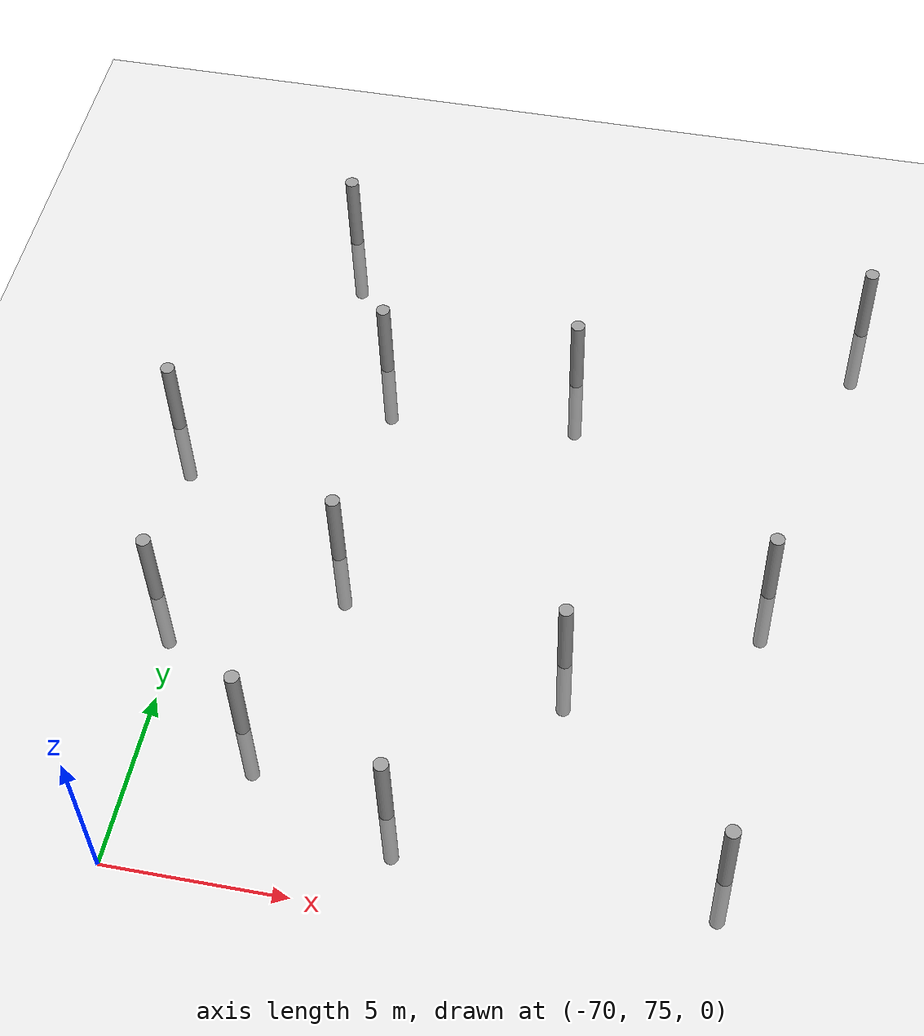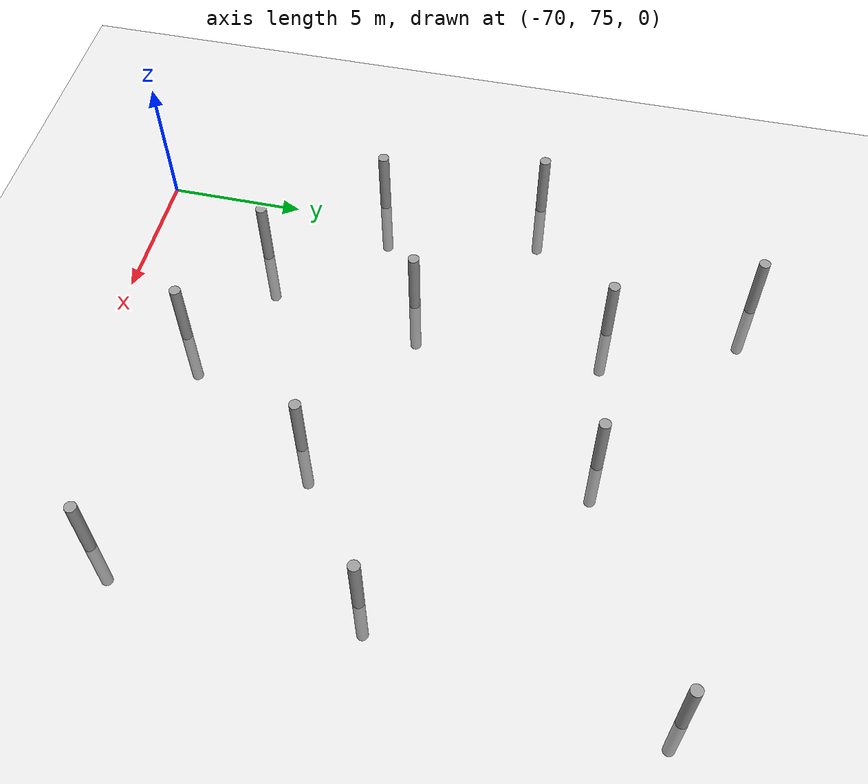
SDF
<sdf version="1.6">
 <world name="default">
  <model name="ground_plane">
   <static>1</static>
   <link name="link">
    <collision name="collision">
     <geometry><plane><normal>0 0 1</normal><size>100 100</size></plane></geometry>
     <surface><friction><ode><mu>100</mu><mu2>50</mu2></ode></friction></surface>
    </collision>
    <visual name="visual">
     <cast_shadows>0</cast_shadows>
     <geometry><plane><normal>0 0 1</normal><size>100 100</size></plane></geometry>
     <material>
      <script><uri>file://media/materials/scripts/gazebo.material</uri><name>Gazebo/Grey</name></script>
     </material>
    </visual>
   </link>
  </model>
  <model name="empty_pillars">
   <model name="empty_pillar_clone_1">
    <link name="link">
     <inertial>
      <mass>1</mass>
      <inertia><ixx>0.145833</ixx><ixy>0</ixy><ixz>0</ixz><iyy>0.145833</iyy><iyz>0</iyz><izz>0.125</izz></inertia>
     </inertial>
     <visual name="visual">
      <geometry><cylinder><radius>0.2</radius><length>5</length></cylinder></geometry>
      <material>
       <script><name>Gazebo/Grey</name><uri>file://media/materials/scripts/gazebo.material</uri></script>
       <shader type="vertex"><normal_map>__default__</normal_map></shader>
       <ambient>0.3 0.3 0.3 1</ambient>
       <diffuse>0.7 0.7 0.7 1</diffuse>
       <specular>0.01 0.01 0.01 1</specular>
       <emissive>0 0 0 1</emissive>
      </material>
     </visual>
     <collision name="collision">
      <geometry><cylinder><radius>0.05</radius><length>5</length></cylinder></geometry>
      <surface>
       <friction>
        <ode><mu>1</mu><mu2>1</mu2><fdir1>0 0 0</fdir1><slip1>0</slip1><slip2>0</slip2></ode>
        <torsional>
         <coefficient>1</coefficient>
         <patch_radius>0</patch_radius>
         <surface_radius>0</surface_radius>
         <use_patch_radius>1</use_patch_radius>
         <ode><slip>0</slip></ode>
        </torsional>
       </friction>
       <bounce><restitution_coefficient>0</restitution_coefficient><threshold>1e+06</threshold></bounce>
       <contact>
        <collide_without_contact>0</collide_without_contact>
        <collide_without_contact_bitmask>1</collide_without_contact_bitmask>
        <collide_bitmask>1</collide_bitmask>
        <ode>
         <soft_cfm>0</soft_cfm>
         <soft_erp>0.2</soft_erp>
         <kp>1e+13</kp>
         <kd>1</kd>
         <max_vel>0.01</max_vel>
         <min_depth>0</min_depth>
        </ode>
        <bullet>
         <split_impulse>1</split_impulse>
         <split_impulse_penetration_threshold>-0.01</split_impulse_penetration_threshold>
         <soft_cfm>0</soft_cfm>
         <soft_erp>0.2</soft_erp>
         <kp>1e+13</kp>
         <kd>1</kd>
        </bullet>
       </contact>
      </surface>
     </collision>
    </link>
    <static>0</static>
    <pose>8.92248 2.14838 0 0 -0 0</pose>
   </model>
   <model name="empty_pillar_clone_26">
    <link name="link">
     <inertial>
      <mass>1</mass>
      <inertia><ixx>0.145833</ixx><ixy>0</ixy><ixz>0</ixz><iyy>0.145833</iyy><iyz>0</iyz><izz>0.125</izz></inertia>
     </inertial>
     <visual name="visual">
      <geometry><cylinder><radius>0.2</radius><length>5</length></cylinder></geometry>
      <material>
       <script><name>Gazebo/Grey</name><uri>file://media/materials/scripts/gazebo.material</uri></script>
       <shader type="vertex"><normal_map>__default__</normal_map></shader>
       <ambient>0.3 0.3 0.3 1</ambient>
       <diffuse>0.7 0.7 0.7 1</diffuse>
       <specular>0.01 0.01 0.01 1</specular>
       <emissive>0 0 0 1</emissive>
      </material>
     </visual>
     <collision name="collision">
      <geometry><cylinder><radius>0.05</radius><length>5</length></cylinder></geometry>
      <surface>
       <friction>
        <ode><mu>1</mu><mu2>1</mu2><fdir1>0 0 0</fdir1><slip1>0</slip1><slip2>0</slip2></ode>
        <torsional>
         <coefficient>1</coefficient>
         <patch_radius>0</patch_radius>
         <surface_radius>0</surface_radius>
         <use_patch_radius>1</use_patch_radius>
         <ode><slip>0</slip></ode>
        </torsional>
       </friction>
       <bounce><restitution_coefficient>0</restitution_coefficient><threshold>1e+06</threshold></bounce>
       <contact>
        <collide_without_contact>0</collide_without_contact>
        <collide_without_contact_bitmask>1</collide_without_contact_bitmask>
        <collide_bitmask>1</collide_bitmask>
        <ode>
         <soft_cfm>0</soft_cfm>
         <soft_erp>0.2</soft_erp>
         <kp>1e+13</kp>
         <kd>1</kd>
         <max_vel>0.01</max_vel>
         <min_depth>0</min_depth>
        </ode>
        <bullet>
         <split_impulse>1</split_impulse>
         <split_impulse_penetration_threshold>-0.01</split_impulse_penetration_threshold>
         <soft_cfm>0</soft_cfm>
         <soft_erp>0.2</soft_erp>
         <kp>1e+13</kp>
         <kd>1</kd>
        </bullet>
       </contact>
      </surface>
     </collision>
    </link>
    <static>0</static>
    <pose>7.70652 20.1444 0 0 -0 0</pose>
   </model>
   <model name="empty_pillar_clone_27">
    <link name="link">
     <inertial>
      <mass>1</mass>
      <inertia><ixx>0.145833</ixx><ixy>0</ixy><ixz>0</ixz><iyy>0.145833</iyy><iyz>0</iyz><izz>0.125</izz></inertia>
     </inertial>
     <visual name="visual">
      <geometry><cylinder><radius>0.2</radius><length>5</length></cylinder></geometry>
      <material>
       <script><name>Gazebo/Grey</name><uri>file://media/materials/scripts/gazebo.material</uri></script>
       <shader type="vertex"><normal_map>__default__</normal_map></shader>
       <ambient>0.3 0.3 0.3 1</ambient>
       <diffuse>0.7 0.7 0.7 1</diffuse>
       <specular>0.01 0.01 0.01 1</specular>
       <emissive>0 0 0 1</emissive>
      </material>
     </visual>
     <collision name="collision">
      <geometry><cylinder><radius>0.05</radius><length>5</length></cylinder></geometry>
      <surface>
       <friction>
        <ode><mu>1</mu><mu2>1</mu2><fdir1>0 0 0</fdir1><slip1>0</slip1><slip2>0</slip2></ode>
        <torsional>
         <coefficient>1</coefficient>
         <patch_radius>0</patch_radius>
         <surface_radius>0</surface_radius>
         <use_patch_radius>1</use_patch_radius>
         <ode><slip>0</slip></ode>
        </torsional>
       </friction>
       <bounce><restitution_coefficient>0</restitution_coefficient><threshold>1e+06</threshold></bounce>
       <contact>
        <collide_without_contact>0</collide_without_contact>
        <collide_without_contact_bitmask>1</collide_without_contact_bitmask>
        <collide_bitmask>1</collide_bitmask>
        <ode>
         <soft_cfm>0</soft_cfm>
         <soft_erp>0.2</soft_erp>
         <kp>1e+13</kp>
         <kd>1</kd>
         <max_vel>0.01</max_vel>
         <min_depth>0</min_depth>
        </ode>
        <bullet>
         <split_impulse>1</split_impulse>
         <split_impulse_penetration_threshold>-0.01</split_impulse_penetration_threshold>
         <soft_cfm>0</soft_cfm>
         <soft_erp>0.2</soft_erp>
         <kp>1e+13</kp>
         <kd>1</kd>
        </bullet>
       </contact>
      </surface>
     </collision>
    </link>
    <static>0</static>
    <pose>4.32163 11.823 0 0 -0 0</pose>
   </model>
   <model name="empty_pillar_clone_28">
    <link name="link">
     <inertial>
      <mass>1</mass>
      <inertia><ixx>0.145833</ixx><ixy>0</ixy><ixz>0</ixz><iyy>0.145833</iyy><iyz>0</iyz><izz>0.125</izz></inertia>
     </inertial>
     <visual name="visual">
      <geometry><cylinder><radius>0.2</radius><length>5</length></cylinder></geometry>
      <material>
       <script><name>Gazebo/Grey</name><uri>file://media/materials/scripts/gazebo.material</uri></script>
       <shader type="vertex"><normal_map>__default__</normal_map></shader>
       <ambient>0.3 0.3 0.3 1</ambient>
       <diffuse>0.7 0.7 0.7 1</diffuse>
       <specular>0.01 0.01 0.01 1</specular>
       <emissive>0 0 0 1</emissive>
      </material>
     </visual>
     <collision name="collision">
      <geometry><cylinder><radius>0.05</radius><length>5</length></cylinder></geometry>
      <surface>
       <friction>
        <ode><mu>1</mu><mu2>1</mu2><fdir1>0 0 0</fdir1><slip1>0</slip1><slip2>0</slip2></ode>
        <torsional>
         <coefficient>1</coefficient>
         <patch_radius>0</patch_radius>
         <surface_radius>0</surface_radius>
         <use_patch_radius>1</use_patch_radius>
         <ode><slip>0</slip></ode>
        </torsional>
       </friction>
       <bounce><restitution_coefficient>0</restitution_coefficient><threshold>1e+06</threshold></bounce>
       <contact>
        <collide_without_contact>0</collide_without_contact>
        <collide_without_contact_bitmask>1</collide_without_contact_bitmask>
        <collide_bitmask>1</collide_bitmask>
        <ode>
         <soft_cfm>0</soft_cfm>
         <soft_erp>0.2</soft_erp>
         <kp>1e+13</kp>
         <kd>1</kd>
         <max_vel>0.01</max_vel>
         <min_depth>0</min_depth>
        </ode>
        <bullet>
         <split_impulse>1</split_impulse>
         <split_impulse_penetration_threshold>-0.01</split_impulse_penetration_threshold>
         <soft_cfm>0</soft_cfm>
         <soft_erp>0.2</soft_erp>
         <kp>1e+13</kp>
         <kd>1</kd>
        </bullet>
       </contact>
      </surface>
     </collision>
    </link>
    <static>0</static>
    <pose>15.5447 15.5867 0 0 -0 0</pose>
   </model>
   <model name="empty_pillar_clone_29">
    <link name="link">
     <inertial>
      <mass>1</mass>
      <inertia><ixx>0.145833</ixx><ixy>0</ixy><ixz>0</ixz><iyy>0.145833</iyy><iyz>0</iyz><izz>0.125</izz></inertia>
     </inertial>
     <visual name="visual">
      <geometry><cylinder><radius>0.2</radius><length>5</length></cylinder></geometry>
      <material>
       <script><name>Gazebo/Grey</name><uri>file://media/materials/scripts/gazebo.material</uri></script>
       <shader type="vertex"><normal_map>__default__</normal_map></shader>
       <ambient>0.3 0.3 0.3 1</ambient>
       <diffuse>0.7 0.7 0.7 1</diffuse>
       <specular>0.01 0.01 0.01 1</specular>
       <emissive>0 0 0 1</emissive>
      </material>
     </visual>
     <collision name="collision">
      <geometry><cylinder><radius>0.05</radius><length>5</length></cylinder></geometry>
      <surface>
       <friction>
        <ode><mu>1</mu><mu2>1</mu2><fdir1>0 0 0</fdir1><slip1>0</slip1><slip2>0</slip2></ode>
        <torsional>
         <coefficient>1</coefficient>
         <patch_radius>0</patch_radius>
         <surface_radius>0</surface_radius>
         <use_patch_radius>1</use_patch_radius>
         <ode><slip>0</slip></ode>
        </torsional>
       </friction>
       <bounce><restitution_coefficient>0</restitution_coefficient><threshold>1e+06</threshold></bounce>
       <contact>
        <collide_without_contact>0</collide_without_contact>
        <collide_without_contact_bitmask>1</collide_without_contact_bitmask>
        <collide_bitmask>1</collide_bitmask>
        <ode>
         <soft_cfm>0</soft_cfm>
         <soft_erp>0.2</soft_erp>
         <kp>1e+13</kp>
         <kd>1</kd>
         <max_vel>0.01</max_vel>
         <min_depth>0</min_depth>
        </ode>
        <bullet>
         <split_impulse>1</split_impulse>
         <split_impulse_penetration_threshold>-0.01</split_impulse_penetration_threshold>
         <soft_cfm>0</soft_cfm>
         <soft_erp>0.2</soft_erp>
         <kp>1e+13</kp>
         <kd>1</kd>
        </bullet>
       </contact>
      </surface>
     </collision>
    </link>
    <static>0</static>
    <pose>10.08 8.0876 0 0 -0 0</pose>
   </model>
   <model name="empty_pillar_clone_30">
    <link name="link">
     <inertial>
      <mass>1</mass>
      <inertia><ixx>0.145833</ixx><ixy>0</ixy><ixz>0</ixz><iyy>0.145833</iyy><iyz>0</iyz><izz>0.125</izz></inertia>
     </inertial>
     <visual name="visual">
      <geometry><cylinder><radius>0.2</radius><length>5</length></cylinder></geometry>
      <material>
       <script><name>Gazebo/Grey</name><uri>file://media/materials/scripts/gazebo.material</uri></script>
       <shader type="vertex"><normal_map>__default__</normal_map></shader>
       <ambient>0.3 0.3 0.3 1</ambient>
       <diffuse>0.7 0.7 0.7 1</diffuse>
       <specular>0.01 0.01 0.01 1</specular>
       <emissive>0 0 0 1</emissive>
      </material>
     </visual>
     <collision name="collision">
      <geometry><cylinder><radius>0.05</radius><length>5</length></cylinder></geometry>
      <surface>
       <friction>
        <ode><mu>1</mu><mu2>1</mu2><fdir1>0 0 0</fdir1><slip1>0</slip1><slip2>0</slip2></ode>
        <torsional>
         <coefficient>1</coefficient>
         <patch_radius>0</patch_radius>
         <surface_radius>0</surface_radius>
         <use_patch_radius>1</use_patch_radius>
         <ode><slip>0</slip></ode>
        </torsional>
       </friction>
       <bounce><restitution_coefficient>0</restitution_coefficient><threshold>1e+06</threshold></bounce>
       <contact>
        <collide_without_contact>0</collide_without_contact>
        <collide_without_contact_bitmask>1</collide_without_contact_bitmask>
        <collide_bitmask>1</collide_bitmask>
        <ode>
         <soft_cfm>0</soft_cfm>
         <soft_erp>0.2</soft_erp>
         <kp>1e+13</kp>
         <kd>1</kd>
         <max_vel>0.01</max_vel>
         <min_depth>0</min_depth>
        </ode>
        <bullet>
         <split_impulse>1</split_impulse>
         <split_impulse_penetration_threshold>-0.01</split_impulse_penetration_threshold>
         <soft_cfm>0</soft_cfm>
         <soft_erp>0.2</soft_erp>
         <kp>1e+13</kp>
         <kd>1</kd>
        </bullet>
       </contact>
      </surface>
     </collision>
    </link>
    <static>0</static>
    <pose>23.752 19.2231 0 0 -0 0</pose>
   </model>
   <model name="empty_pillar_clone_31">
    <link name="link">
     <inertial>
      <mass>1</mass>
      <inertia><ixx>0.145833</ixx><ixy>0</ixy><ixz>0</ixz><iyy>0.145833</iyy><iyz>0</iyz><izz>0.125</izz></inertia>
     </inertial>
     <visual name="visual">
      <geometry><cylinder><radius>0.2</radius><length>5</length></cylinder></geometry>
      <material>
       <script><name>Gazebo/Grey</name><uri>file://media/materials/scripts/gazebo.material</uri></script>
       <shader type="vertex"><normal_map>__default__</normal_map></shader>
       <ambient>0.3 0.3 0.3 1</ambient>
       <diffuse>0.7 0.7 0.7 1</diffuse>
       <specular>0.01 0.01 0.01 1</specular>
       <emissive>0 0 0 1</emissive>
      </material>
     </visual>
     <collision name="collision">
      <geometry><cylinder><radius>0.05</radius><length>5</length></cylinder></geometry>
      <surface>
       <friction>
        <ode><mu>1</mu><mu2>1</mu2><fdir1>0 0 0</fdir1><slip1>0</slip1><slip2>0</slip2></ode>
        <torsional>
         <coefficient>1</coefficient>
         <patch_radius>0</patch_radius>
         <surface_radius>0</surface_radius>
         <use_patch_radius>1</use_patch_radius>
         <ode><slip>0</slip></ode>
        </torsional>
       </friction>
       <bounce><restitution_coefficient>0</restitution_coefficient><threshold>1e+06</threshold></bounce>
       <contact>
        <collide_without_contact>0</collide_without_contact>
        <collide_without_contact_bitmask>1</collide_without_contact_bitmask>
        <collide_bitmask>1</collide_bitmask>
        <ode>
         <soft_cfm>0</soft_cfm>
         <soft_erp>0.2</soft_erp>
         <kp>1e+13</kp>
         <kd>1</kd>
         <max_vel>0.01</max_vel>
         <min_depth>0</min_depth>
        </ode>
        <bullet>
         <split_impulse>1</split_impulse>
         <split_impulse_penetration_threshold>-0.01</split_impulse_penetration_threshold>
         <soft_cfm>0</soft_cfm>
         <soft_erp>0.2</soft_erp>
         <kp>1e+13</kp>
         <kd>1</kd>
        </bullet>
       </contact>
      </surface>
     </collision>
    </link>
    <static>0</static>
    <pose>22.0722 9.04182 0 0 -0 0</pose>
   </model>
   <model name="empty_pillar_clone_32">
    <link name="link">
     <inertial>
      <mass>1</mass>
      <inertia><ixx>0.145833</ixx><ixy>0</ixy><ixz>0</ixz><iyy>0.145833</iyy><iyz>0</iyz><izz>0.125</izz></inertia>
     </inertial>
     <visual name="visual">
      <geometry><cylinder><radius>0.2</radius><length>5</length></cylinder></geometry>
      <material>
       <script><name>Gazebo/Grey</name><uri>file://media/materials/scripts/gazebo.material</uri></script>
       <shader type="vertex"><normal_map>__default__</normal_map></shader>
       <ambient>0.3 0.3 0.3 1</ambient>
       <diffuse>0.7 0.7 0.7 1</diffuse>
       <specular>0.01 0.01 0.01 1</specular>
       <emissive>0 0 0 1</emissive>
      </material>
     </visual>
     <collision name="collision">
      <geometry><cylinder><radius>0.05</radius><length>5</length></cylinder></geometry>
      <surface>
       <friction>
        <ode><mu>1</mu><mu2>1</mu2><fdir1>0 0 0</fdir1><slip1>0</slip1><slip2>0</slip2></ode>
        <torsional>
         <coefficient>1</coefficient>
         <patch_radius>0</patch_radius>
         <surface_radius>0</surface_radius>
         <use_patch_radius>1</use_patch_radius>
         <ode><slip>0</slip></ode>
        </torsional>
       </friction>
       <bounce><restitution_coefficient>0</restitution_coefficient><threshold>1e+06</threshold></bounce>
       <contact>
        <collide_without_contact>0</collide_without_contact>
        <collide_without_contact_bitmask>1</collide_without_contact_bitmask>
        <collide_bitmask>1</collide_bitmask>
        <ode>
         <soft_cfm>0</soft_cfm>
         <soft_erp>0.2</soft_erp>
         <kp>1e+13</kp>
         <kd>1</kd>
         <max_vel>0.01</max_vel>
         <min_depth>0</min_depth>
        </ode>
        <bullet>
         <split_impulse>1</split_impulse>
         <split_impulse_penetration_threshold>-0.01</split_impulse_penetration_threshold>
         <soft_cfm>0</soft_cfm>
         <soft_erp>0.2</soft_erp>
         <kp>1e+13</kp>
         <kd>1</kd>
        </bullet>
       </contact>
      </surface>
     </collision>
    </link>
    <static>0</static>
    <pose>21.9854 0.15966 0 0 -0 0</pose>
   </model>
   <model name="empty_pillar_clone_49">
    <link name="link">
     <inertial>
      <mass>1</mass>
      <inertia><ixx>0.145833</ixx><ixy>0</ixy><ixz>0</ixz><iyy>0.145833</iyy><iyz>0</iyz><izz>0.125</izz></inertia>
     </inertial>
     <visual name="visual">
      <geometry><cylinder><radius>0.2</radius><length>5</length></cylinder></geometry>
      <material>
       <script><name>Gazebo/Grey</name><uri>file://media/materials/scripts/gazebo.material</uri></script>
       <shader type="vertex"><normal_map>__default__</normal_map></shader>
       <ambient>0.3 0.3 0.3 1</ambient>
       <diffuse>0.7 0.7 0.7 1</diffuse>
       <specular>0.01 0.01 0.01 1</specular>
       <emissive>0 0 0 1</emissive>
      </material>
     </visual>
     <collision name="collision">
      <geometry><cylinder><radius>0.05</radius><length>5</length></cylinder></geometry>
      <surface>
       <friction>
        <ode><mu>1</mu><mu2>1</mu2><fdir1>0 0 0</fdir1><slip1>0</slip1><slip2>0</slip2></ode>
        <torsional>
         <coefficient>1</coefficient>
         <patch_radius>0</patch_radius>
         <surface_radius>0</surface_radius>
         <use_patch_radius>1</use_patch_radius>
         <ode><slip>0</slip></ode>
        </torsional>
       </friction>
       <bounce><restitution_coefficient>0</restitution_coefficient><threshold>1e+06</threshold></bounce>
       <contact>
        <collide_without_contact>0</collide_without_contact>
        <collide_without_contact_bitmask>1</collide_without_contact_bitmask>
        <collide_bitmask>1</collide_bitmask>
        <ode>
         <soft_cfm>0</soft_cfm>
         <soft_erp>0.2</soft_erp>
         <kp>1e+13</kp>
         <kd>1</kd>
         <max_vel>0.01</max_vel>
         <min_depth>0</min_depth>
        </ode>
        <bullet>
         <split_impulse>1</split_impulse>
         <split_impulse_penetration_threshold>-0.01</split_impulse_penetration_threshold>
         <soft_cfm>0</soft_cfm>
         <soft_erp>0.2</soft_erp>
         <kp>1e+13</kp>
         <kd>1</kd>
        </bullet>
       </contact>
      </surface>
     </collision>
    </link>
    <static>0</static>
    <pose>9.84768 15.1425 0 0 -0 0</pose>
   </model>
   <model name="empty_pillar_clone_55">
    <link name="link">
     <inertial>
      <mass>1</mass>
      <inertia><ixx>0.145833</ixx><ixy>0</ixy><ixz>0</ixz><iyy>0.145833</iyy><iyz>0</iyz><izz>0.125</izz></inertia>
     </inertial>
     <visual name="visual">
      <geometry><cylinder><radius>0.2</radius><length>5</length></cylinder></geometry>
      <material>
       <script><name>Gazebo/Grey</name><uri>file://media/materials/scripts/gazebo.material</uri></script>
       <shader type="vertex"><normal_map>__default__</normal_map></shader>
       <ambient>0.3 0.3 0.3 1</ambient>
       <diffuse>0.7 0.7 0.7 1</diffuse>
       <specular>0.01 0.01 0.01 1</specular>
       <emissive>0 0 0 1</emissive>
      </material>
     </visual>
     <collision name="collision">
      <geometry><cylinder><radius>0.05</radius><length>5</length></cylinder></geometry>
      <surface>
       <friction>
        <ode><mu>1</mu><mu2>1</mu2><fdir1>0 0 0</fdir1><slip1>0</slip1><slip2>0</slip2></ode>
        <torsional>
         <coefficient>1</coefficient>
         <patch_radius>0</patch_radius>
         <surface_radius>0</surface_radius>
         <use_patch_radius>1</use_patch_radius>
         <ode><slip>0</slip></ode>
        </torsional>
       </friction>
       <bounce><restitution_coefficient>0</restitution_coefficient><threshold>1e+06</threshold></bounce>
       <contact>
        <collide_without_contact>0</collide_without_contact>
        <collide_without_contact_bitmask>1</collide_without_contact_bitmask>
        <collide_bitmask>1</collide_bitmask>
        <ode>
         <soft_cfm>0</soft_cfm>
         <soft_erp>0.2</soft_erp>
         <kp>1e+13</kp>
         <kd>1</kd>
         <max_vel>0.01</max_vel>
         <min_depth>0</min_depth>
        </ode>
        <bullet>
         <split_impulse>1</split_impulse>
         <split_impulse_penetration_threshold>-0.01</split_impulse_penetration_threshold>
         <soft_cfm>0</soft_cfm>
         <soft_erp>0.2</soft_erp>
         <kp>1e+13</kp>
         <kd>1</kd>
        </bullet>
       </contact>
      </surface>
     </collision>
    </link>
    <static>0</static>
    <pose>13.2247 0.382706 0 0 -0 0</pose>
   </model>
   <model name="empty_pillar_clone_57">
    <link name="link">
     <inertial>
      <mass>1</mass>
      <inertia><ixx>0.145833</ixx><ixy>0</ixy><ixz>0</ixz><iyy>0.145833</iyy><iyz>0</iyz><izz>0.125</izz></inertia>
     </inertial>
     <visual name="visual">
      <geometry><cylinder><radius>0.2</radius><length>5</length></cylinder></geometry>
      <material>
       <script><name>Gazebo/Grey</name><uri>file://media/materials/scripts/gazebo.material</uri></script>
       <shader type="vertex"><normal_map>__default__</normal_map></shader>
       <ambient>0.3 0.3 0.3 1</ambient>
       <diffuse>0.7 0.7 0.7 1</diffuse>
       <specular>0.01 0.01 0.01 1</specular>
       <emissive>0 0 0 1</emissive>
      </material>
     </visual>
     <collision name="collision">
      <geometry><cylinder><radius>0.05</radius><length>5</length></cylinder></geometry>
      <surface>
       <friction>
        <ode><mu>1</mu><mu2>1</mu2><fdir1>0 0 0</fdir1><slip1>0</slip1><slip2>0</slip2></ode>
        <torsional>
         <coefficient>1</coefficient>
         <patch_radius>0</patch_radius>
         <surface_radius>0</surface_radius>
         <use_patch_radius>1</use_patch_radius>
         <ode><slip>0</slip></ode>
        </torsional>
       </friction>
       <bounce><restitution_coefficient>0</restitution_coefficient><threshold>1e+06</threshold></bounce>
       <contact>
        <collide_without_contact>0</collide_without_contact>
        <collide_without_contact_bitmask>1</collide_without_contact_bitmask>
        <collide_bitmask>1</collide_bitmask>
        <ode>
         <soft_cfm>0</soft_cfm>
         <soft_erp>0.2</soft_erp>
         <kp>1e+13</kp>
         <kd>1</kd>
         <max_vel>0.01</max_vel>
         <min_depth>0</min_depth>
        </ode>
        <bullet>
         <split_impulse>1</split_impulse>
         <split_impulse_penetration_threshold>-0.01</split_impulse_penetration_threshold>
         <soft_cfm>0</soft_cfm>
         <soft_erp>0.2</soft_erp>
         <kp>1e+13</kp>
         <kd>1</kd>
        </bullet>
       </contact>
      </surface>
     </collision>
    </link>
    <static>0</static>
    <pose>5.4355 5.86468 0 0 -0 0</pose>
   </model>
   <model name="empty_pillar_clone_7">
    <link name="link">
     <inertial>
      <mass>1</mass>
      <inertia><ixx>0.145833</ixx><ixy>0</ixy><ixz>0</ixz><iyy>0.145833</iyy><iyz>0</iyz><izz>0.125</izz></inertia>
     </inertial>
     <visual name="visual">
      <geometry><cylinder><radius>0.2</radius><length>5</length></cylinder></geometry>
      <material>
       <script><name>Gazebo/Grey</name><uri>file://media/materials/scripts/gazebo.material</uri></script>
       <shader type="vertex"><normal_map>__default__</normal_map></shader>
       <ambient>0.3 0.3 0.3 1</ambient>
       <diffuse>0.7 0.7 0.7 1</diffuse>
       <specular>0.01 0.01 0.01 1</specular>
       <emissive>0 0 0 1</emissive>
      </material>
     </visual>
     <collision name="collision">
      <geometry><cylinder><radius>0.05</radius><length>5</length></cylinder></geometry>
      <surface>
       <friction>
        <ode><mu>1</mu><mu2>1</mu2><fdir1>0 0 0</fdir1><slip1>0</slip1><slip2>0</slip2></ode>
        <torsional>
         <coefficient>1</coefficient>
         <patch_radius>0</patch_radius>
         <surface_radius>0</surface_radius>
         <use_patch_radius>1</use_patch_radius>
         <ode><slip>0</slip></ode>
        </torsional>
       </friction>
       <bounce><restitution_coefficient>0</restitution_coefficient><threshold>1e+06</threshold></bounce>
       <contact>
        <collide_without_contact>0</collide_without_contact>
        <collide_without_contact_bitmask>1</collide_without_contact_bitmask>
        <collide_bitmask>1</collide_bitmask>
        <ode>
         <soft_cfm>0</soft_cfm>
         <soft_erp>0.2</soft_erp>
         <kp>1e+13</kp>
         <kd>1</kd>
         <max_vel>0.01</max_vel>
         <min_depth>0</min_depth>
        </ode>
        <bullet>
         <split_impulse>1</split_impulse>
         <split_impulse_penetration_threshold>-0.01</split_impulse_penetration_threshold>
         <soft_cfm>0</soft_cfm>
         <soft_erp>0.2</soft_erp>
         <kp>1e+13</kp>
         <kd>1</kd>
        </bullet>
       </contact>
      </surface>
     </collision>
    </link>
    <static>0</static>
    <pose>16.9242 5.74519 0 0 -0 0</pose>
   </model>
   <static>0</static>
   <pose>-76.4247 77.3975 0 0 -0 0</pose>
  </model>
 </world>
</sdf>
